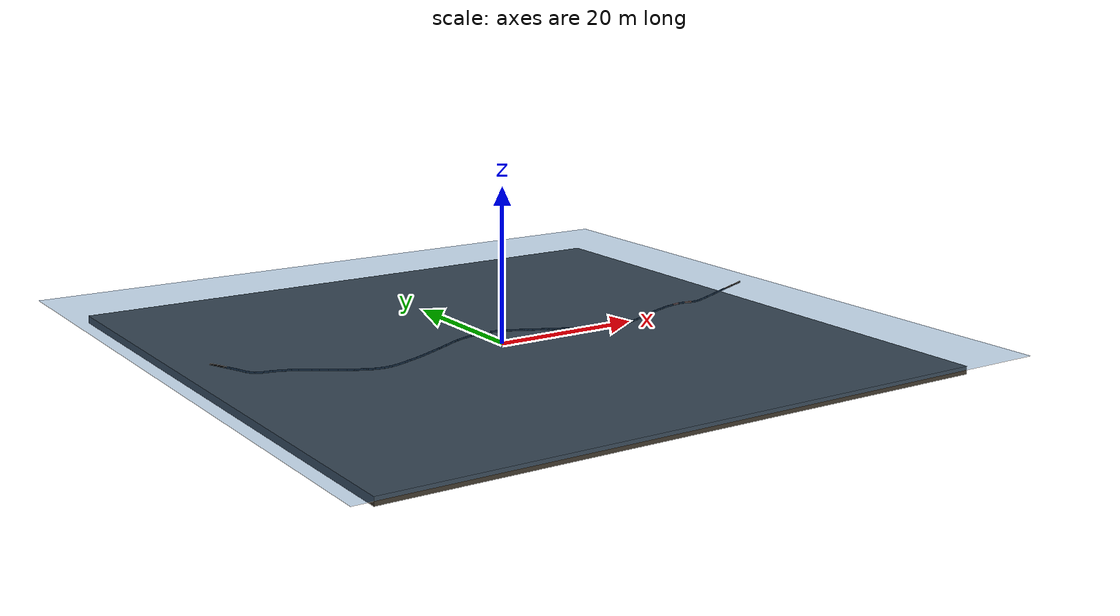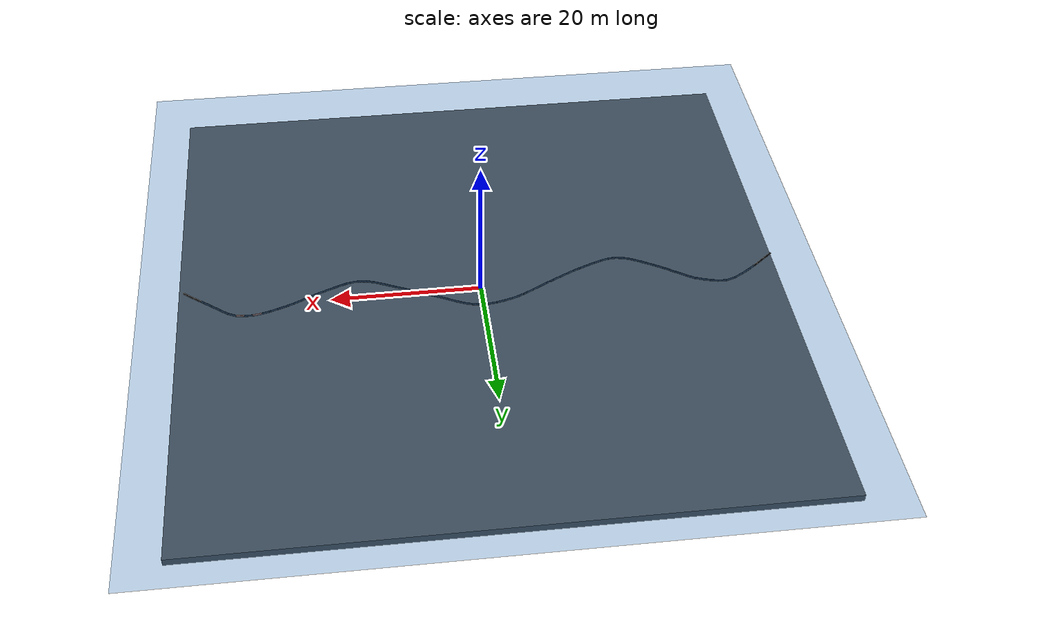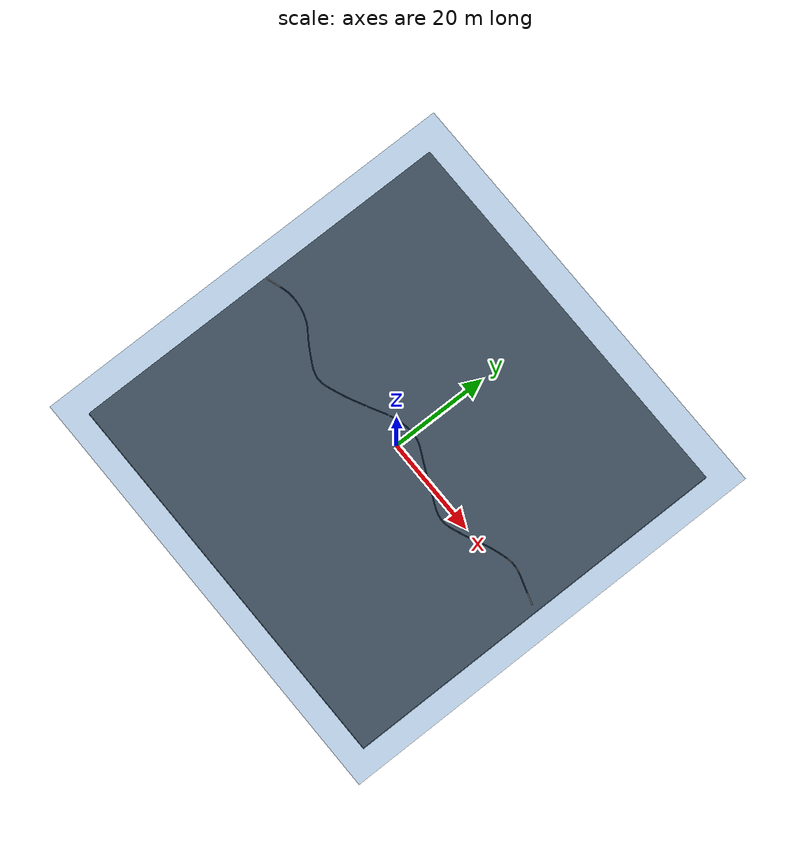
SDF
<sdf version="1.9">
 <world name="ocean_world">
  <model name="sea_surface">
   <static>true</static>
   <pose>0 0 2.20 0 0 0</pose>
   <link name="surface_link">
    <visual name="surface_visual">
     <geometry><box><size>90 90 0.04</size></box></geometry>
     <transparency>0.55</transparency>
     <material>
      <ambient>0.22 0.46 0.70 0.35</ambient>
      <diffuse>0.22 0.46 0.70 0.35</diffuse>
      <specular>0.08 0.12 0.18 0.35</specular>
     </material>
    </visual>
   </link>
  </model>
  <model name="seafloor">
   <static>true</static>
   <link name="link">
    <collision name="collision">
     <geometry><box><size>80 80 1</size></box></geometry>
     <surface>
      <friction><ode><mu>8.0</mu><mu2>8.0</mu2><slip1>0.001</slip1><slip2>0.001</slip2></ode></friction>
      <contact>
       <ode><kp>5000000</kp><kd>50000</kd><min_depth>0.0005</min_depth><max_vel>0.02</max_vel></ode>
      </contact>
     </surface>
    </collision>
    <visual name="visual">
     <geometry><box><size>80 80 1</size></box></geometry>
     <material>
      <ambient>0.17 0.15 0.12 1</ambient>
      <diffuse>0.24 0.21 0.17 1</diffuse>
      <specular>0.02 0.02 0.02 1</specular>
     </material>
    </visual>
   </link>
  </model>
  <model name="debug_center_box">
   <static>true</static>
   <pose>0 0 1 0 0 0</pose>
   <link name="debug_link">
    <collision name="debug_collision"><geometry><box><size>0.5 0.5 0.5</size></box></geometry></collision>
    <visual name="debug_visual">
     <geometry><box><size>0.5 0.5 0.5</size></box></geometry>
     <material>
      <ambient>1 0 0 1</ambient>
      <diffuse>1 0 0 1</diffuse>
      <specular>0.2 0.2 0.2 1</specular>
      <emissive>0.2 0 0 1</emissive>
     </material>
    </visual>
   </link>
  </model>
  <model name="submarine_cable">
   <static>true</static>
   <link name="cable_link">
    <inertial>
     <mass>900</mass>
     <inertia><ixx>200000</ixx><iyy>200000</iyy><izz>6500</izz><ixy>0</ixy><ixz>0</ixz><iyz>0</iyz></inertia>
    </inertial>
    <velocity_decay><linear>6.0</linear><angular>9.0</angular></velocity_decay>
    <collision name="segment_collision_1">
     <pose>-38.4991 1.0268 3.0000 0 1.948426 0.429690</pose>
     <geometry><cylinder><radius>0.12</radius><length>1.099789</length></cylinder></geometry>
    </collision>
    <visual name="segment_visual_1">
     <pose>-38.4818 1.0356 2.9923 0 1.948427 0.431259</pose>
     <geometry><cylinder><radius>0.12</radius><length>1.141484</length></cylinder></geometry>
     <material><ambient>0.01 0.01 0.01 1</ambient><diffuse>0.01 0.01 0.01 1</diffuse></material>
    </visual>
    <collision name="segment_collision_2">
     <pose>-37.4992 1.4850 2.5637 0 1.948433 0.423177</pose>
     <geometry><cylinder><radius>0.12</radius><length>1.099978</length></cylinder></geometry>
    </collision>
    <visual name="segment_visual_2">
     <pose>-37.4997 1.4863 2.5637 0 1.948345 0.429169</pose>
     <geometry><cylinder><radius>0.12</radius><length>1.183397</length></cylinder></geometry>
     <material><ambient>0.01 0.01 0.01 1</ambient><diffuse>0.01 0.01 0.01 1</diffuse></material>
    </visual>
    <collision name="segment_collision_3">
     <pose>-36.4935 1.9301 2.1275 0 1.948540 0.390872</pose>
     <geometry><cylinder><radius>0.12</radius><length>1.099878</length></cylinder></geometry>
    </collision>
    <visual name="segment_visual_3">
     <pose>-36.4932 1.9300 2.1276 0 1.948174 0.401244</pose>
     <geometry><cylinder><radius>0.12</radius><length>1.183385</length></cylinder></geometry>
     <material><ambient>0.01 0.01 0.01 1</ambient><diffuse>0.01 0.01 0.01 1</diffuse></material>
    </visual>
    <collision name="segment_collision_4">
     <pose>-35.4668 2.3225 1.6915 0 1.948877 0.313818</pose>
     <geometry><cylinder><radius>0.12</radius><length>1.099587</length></cylinder></geometry>
    </collision>
    <visual name="segment_visual_4">
     <pose>-35.4660 2.3205 1.6918 0 1.947961 0.325292</pose>
     <geometry><cylinder><radius>0.12</radius><length>1.182517</length></cylinder></geometry>
     <material><ambient>0.01 0.01 0.01 1</ambient><diffuse>0.01 0.01 0.01 1</diffuse></material>
    </visual>
    <collision name="segment_collision_5">
     <pose>-34.4081 2.6069 1.2566 0 1.949407 0.186903</pose>
     <geometry><cylinder><radius>0.12</radius><length>1.098172</length></cylinder></geometry>
    </collision>
    <visual name="segment_visual_5">
     <pose>-34.4110 2.6005 1.2444 0 1.970122 0.192888</pose>
     <geometry><cylinder><radius>0.12</radius><length>1.181233</length></cylinder></geometry>
     <material><ambient>0.01 0.01 0.01 1</ambient><diffuse>0.01 0.01 0.01 1</diffuse></material>
    </visual>
    <collision name="segment_collision_6">
     <pose>-33.3199 2.7285 0.8223 0 1.854131 0.039114</pose>
     <geometry><cylinder><radius>0.12</radius><length>1.099212</length></cylinder></geometry>
    </collision>
    <visual name="segment_visual_6">
     <pose>-33.3287 2.7252 0.8422 0 1.875605 0.037169</pose>
     <geometry><cylinder><radius>0.12</radius><length>1.150257</length></cylinder></geometry>
     <material><ambient>0.01 0.01 0.01 1</ambient><diffuse>0.01 0.01 0.01 1</diffuse></material>
    </visual>
    <collision name="segment_collision_7">
     <pose>-32.2233 2.6924 0.6200 0 1.662847 -0.090705</pose>
     <geometry><cylinder><radius>0.12</radius><length>1.099374</length></cylinder></geometry>
    </collision>
    <visual name="segment_visual_7">
     <pose>-32.2289 2.6931 0.6322 0 1.638242 -0.094895</pose>
     <geometry><cylinder><radius>0.12</radius><length>1.110680</length></cylinder></geometry>
     <material><ambient>0.01 0.01 0.01 1</ambient><diffuse>0.01 0.01 0.01 1</diffuse></material>
    </visual>
    <collision name="segment_collision_8">
     <pose>-31.1375 2.5300 0.6200 0 1.570796 -0.198281</pose>
     <geometry><cylinder><radius>0.12</radius><length>1.099527</length></cylinder></geometry>
    </collision>
    <visual name="segment_visual_8">
     <pose>-31.1379 2.5311 0.6074 0 1.547850 -0.200144</pose>
     <geometry><cylinder><radius>0.12</radius><length>1.101097</length></cylinder></geometry>
     <material><ambient>0.01 0.01 0.01 1</ambient><diffuse>0.01 0.01 0.01 1</diffuse></material>
    </visual>
    <collision name="segment_collision_9">
     <pose>-30.0727 2.2603 0.6200 0 1.570796 -0.293015</pose>
     <geometry><cylinder><radius>0.12</radius><length>1.099662</length></cylinder></geometry>
    </collision>
    <visual name="segment_visual_9">
     <pose>-30.0727 2.2603 0.6200 0 1.570796 -0.293015</pose>
     <geometry><cylinder><radius>0.12</radius><length>1.099662</length></cylinder></geometry>
     <material><ambient>0.01 0.01 0.01 1</ambient><diffuse>0.01 0.01 0.01 1</diffuse></material>
    </visual>
    <collision name="segment_collision_10">
     <pose>-29.0364 1.8961 0.6200 0 1.570796 -0.380450</pose>
     <geometry><cylinder><radius>0.12</radius><length>1.099285</length></cylinder></geometry>
    </collision>
    <visual name="segment_visual_10">
     <pose>-29.0364 1.8961 0.6200 0 1.570796 -0.380450</pose>
     <geometry><cylinder><radius>0.12</radius><length>1.099285</length></cylinder></geometry>
     <material><ambient>0.01 0.01 0.01 1</ambient><diffuse>0.01 0.01 0.01 1</diffuse></material>
    </visual>
    <collision name="segment_collision_11">
     <pose>-28.2214 1.5199 0.6200 0 1.570796 -0.515308</pose>
     <geometry><cylinder><radius>0.12</radius><length>1.099449</length></cylinder></geometry>
    </collision>
    <visual name="segment_visual_11">
     <pose>-28.2214 1.5199 0.6200 0 1.570796 -0.515308</pose>
     <geometry><cylinder><radius>0.12</radius><length>1.099449</length></cylinder></geometry>
     <material><ambient>0.01 0.01 0.01 1</ambient><diffuse>0.01 0.01 0.01 1</diffuse></material>
    </visual>
    <collision name="segment_collision_12">
     <pose>-27.1298 0.8163 0.6200 0 1.570796 -0.572520</pose>
     <geometry><cylinder><radius>0.12</radius><length>1.600000</length></cylinder></geometry>
    </collision>
    <visual name="segment_visual_12">
     <pose>-27.1298 0.8163 0.6200 0 1.570796 -0.572520</pose>
     <geometry><cylinder><radius>0.12</radius><length>1.600000</length></cylinder></geometry>
     <material><ambient>0.01 0.01 0.01 1</ambient><diffuse>0.01 0.01 0.01 1</diffuse></material>
    </visual>
    <collision name="segment_collision_13">
     <pose>-26.0381 0.1127 0.6200 0 1.570796 -0.584306</pose>
     <geometry><cylinder><radius>0.12</radius><length>1.099998</length></cylinder></geometry>
    </collision>
    <visual name="segment_visual_13">
     <pose>-26.0381 0.1127 0.6200 0 1.570796 -0.584306</pose>
     <geometry><cylinder><radius>0.12</radius><length>1.099998</length></cylinder></geometry>
     <material><ambient>0.01 0.01 0.01 1</ambient><diffuse>0.01 0.01 0.01 1</diffuse></material>
    </visual>
    <collision name="segment_collision_14">
     <pose>-25.2961 -0.3964 0.6200 0 1.570796 -0.579301</pose>
     <geometry><cylinder><radius>0.12</radius><length>1.099925</length></cylinder></geometry>
    </collision>
    <visual name="segment_visual_14">
     <pose>-25.2961 -0.3964 0.6200 0 1.570796 -0.579301</pose>
     <geometry><cylinder><radius>0.12</radius><length>1.099925</length></cylinder></geometry>
     <material><ambient>0.01 0.01 0.01 1</ambient><diffuse>0.01 0.01 0.01 1</diffuse></material>
    </visual>
    <collision name="segment_collision_15">
     <pose>-24.3656 -0.9814 0.6200 0 1.570796 -0.540045</pose>
     <geometry><cylinder><radius>0.12</radius><length>1.099650</length></cylinder></geometry>
    </collision>
    <visual name="segment_visual_15">
     <pose>-24.3656 -0.9814 0.6200 0 1.570796 -0.540045</pose>
     <geometry><cylinder><radius>0.12</radius><length>1.099650</length></cylinder></geometry>
     <material><ambient>0.01 0.01 0.01 1</ambient><diffuse>0.01 0.01 0.01 1</diffuse></material>
    </visual>
    <collision name="segment_collision_16">
     <pose>-23.4105 -1.5268 0.6200 0 1.570796 -0.514556</pose>
     <geometry><cylinder><radius>0.12</radius><length>1.099967</length></cylinder></geometry>
    </collision>
    <visual name="segment_visual_16">
     <pose>-23.4105 -1.5268 0.6200 0 1.570796 -0.514556</pose>
     <geometry><cylinder><radius>0.12</radius><length>1.099967</length></cylinder></geometry>
     <material><ambient>0.01 0.01 0.01 1</ambient><diffuse>0.01 0.01 0.01 1</diffuse></material>
    </visual>
    <collision name="segment_collision_17">
     <pose>-22.4507 -2.0640 0.6200 0 1.570796 -0.499401</pose>
     <geometry><cylinder><radius>0.12</radius><length>1.099977</length></cylinder></geometry>
    </collision>
    <visual name="segment_visual_17">
     <pose>-22.4507 -2.0640 0.6200 0 1.570796 -0.499401</pose>
     <geometry><cylinder><radius>0.12</radius><length>1.099977</length></cylinder></geometry>
     <material><ambient>0.01 0.01 0.01 1</ambient><diffuse>0.01 0.01 0.01 1</diffuse></material>
    </visual>
    <collision name="segment_collision_18">
     <pose>-21.4797 -2.5801 0.6200 0 1.570796 -0.451082</pose>
     <geometry><cylinder><radius>0.12</radius><length>1.600000</length></cylinder></geometry>
    </collision>
    <visual name="segment_visual_18">
     <pose>-21.4797 -2.5801 0.6200 0 1.570796 -0.451082</pose>
     <geometry><cylinder><radius>0.12</radius><length>1.600000</length></cylinder></geometry>
     <material><ambient>0.01 0.01 0.01 1</ambient><diffuse>0.01 0.01 0.01 1</diffuse></material>
    </visual>
    <collision name="segment_collision_19">
     <pose>-20.4744 -3.0213 0.6200 0 1.570796 -0.341054</pose>
     <geometry><cylinder><radius>0.12</radius><length>1.099013</length></cylinder></geometry>
    </collision>
    <visual name="segment_visual_19">
     <pose>-20.4744 -3.0213 0.6200 0 1.570796 -0.341054</pose>
     <geometry><cylinder><radius>0.12</radius><length>1.099013</length></cylinder></geometry>
     <material><ambient>0.01 0.01 0.01 1</ambient><diffuse>0.01 0.01 0.01 1</diffuse></material>
    </visual>
    <collision name="segment_collision_20">
     <pose>-19.4201 -3.3111 0.6200 0 1.570796 -0.161096</pose>
     <geometry><cylinder><radius>0.12</radius><length>1.097306</length></cylinder></geometry>
    </collision>
    <visual name="segment_visual_20">
     <pose>-19.4201 -3.3111 0.6200 0 1.570796 -0.161096</pose>
     <geometry><cylinder><radius>0.12</radius><length>1.097306</length></cylinder></geometry>
     <material><ambient>0.01 0.01 0.01 1</ambient><diffuse>0.01 0.01 0.01 1</diffuse></material>
    </visual>
    <collision name="segment_collision_21">
     <pose>-18.3323 -3.3694 0.6200 0 1.570796 0.052815</pose>
     <geometry><cylinder><radius>0.12</radius><length>1.097564</length></cylinder></geometry>
    </collision>
    <visual name="segment_visual_21">
     <pose>-18.3323 -3.3694 0.6200 0 1.570796 0.052815</pose>
     <geometry><cylinder><radius>0.12</radius><length>1.097564</length></cylinder></geometry>
     <material><ambient>0.01 0.01 0.01 1</ambient><diffuse>0.01 0.01 0.01 1</diffuse></material>
    </visual>
    <collision name="segment_collision_22">
     <pose>-17.2523 -3.1965 0.6200 0 1.570796 0.229747</pose>
     <geometry><cylinder><radius>0.12</radius><length>1.099096</length></cylinder></geometry>
    </collision>
    <visual name="segment_visual_22">
     <pose>-17.2523 -3.1965 0.6200 0 1.570796 0.229747</pose>
     <geometry><cylinder><radius>0.12</radius><length>1.099096</length></cylinder></geometry>
     <material><ambient>0.01 0.01 0.01 1</ambient><diffuse>0.01 0.01 0.01 1</diffuse></material>
    </visual>
    <collision name="segment_collision_23">
     <pose>-16.2034 -2.8715 0.6200 0 1.570796 0.335242</pose>
     <geometry><cylinder><radius>0.12</radius><length>1.099794</length></cylinder></geometry>
    </collision>
    <visual name="segment_visual_23">
     <pose>-16.2034 -2.8715 0.6200 0 1.570796 0.335242</pose>
     <geometry><cylinder><radius>0.12</radius><length>1.099794</length></cylinder></geometry>
     <material><ambient>0.01 0.01 0.01 1</ambient><diffuse>0.01 0.01 0.01 1</diffuse></material>
    </visual>
    <collision name="segment_collision_24">
     <pose>-15.1782 -2.4739 0.6200 0 1.570796 0.376336</pose>
     <geometry><cylinder><radius>0.12</radius><length>1.099994</length></cylinder></geometry>
    </collision>
    <visual name="segment_visual_24">
     <pose>-15.1782 -2.4739 0.6200 0 1.570796 0.376336</pose>
     <geometry><cylinder><radius>0.12</radius><length>1.099994</length></cylinder></geometry>
     <material><ambient>0.01 0.01 0.01 1</ambient><diffuse>0.01 0.01 0.01 1</diffuse></material>
    </visual>
    <collision name="segment_collision_25">
     <pose>-14.1577 -2.0631 0.6200 0 1.570796 0.388416</pose>
     <geometry><cylinder><radius>0.12</radius><length>1.099974</length></cylinder></geometry>
    </collision>
    <visual name="segment_visual_25">
     <pose>-14.1577 -2.0631 0.6200 0 1.570796 0.388416</pose>
     <geometry><cylinder><radius>0.12</radius><length>1.099974</length></cylinder></geometry>
     <material><ambient>0.01 0.01 0.01 1</ambient><diffuse>0.01 0.01 0.01 1</diffuse></material>
    </visual>
    <collision name="segment_collision_26">
     <pose>-13.1423 -1.6408 0.6200 0 1.570796 0.412356</pose>
     <geometry><cylinder><radius>0.12</radius><length>1.099883</length></cylinder></geometry>
    </collision>
    <visual name="segment_visual_26">
     <pose>-13.1423 -1.6408 0.6200 0 1.570796 0.412356</pose>
     <geometry><cylinder><radius>0.12</radius><length>1.099883</length></cylinder></geometry>
     <material><ambient>0.01 0.01 0.01 1</ambient><diffuse>0.01 0.01 0.01 1</diffuse></material>
    </visual>
    <collision name="segment_collision_27">
     <pose>-12.1430 -1.1818 0.6200 0 1.570796 0.445225</pose>
     <geometry><cylinder><radius>0.12</radius><length>1.099958</length></cylinder></geometry>
    </collision>
    <visual name="segment_visual_27">
     <pose>-12.1430 -1.1818 0.6200 0 1.570796 0.445225</pose>
     <geometry><cylinder><radius>0.12</radius><length>1.099958</length></cylinder></geometry>
     <material><ambient>0.01 0.01 0.01 1</ambient><diffuse>0.01 0.01 0.01 1</diffuse></material>
    </visual>
    <collision name="segment_collision_28">
     <pose>-11.1573 -0.6936 0.6200 0 1.570796 0.465660</pose>
     <geometry><cylinder><radius>0.12</radius><length>1.099994</length></cylinder></geometry>
    </collision>
    <visual name="segment_visual_28">
     <pose>-11.1573 -0.6936 0.6200 0 1.570796 0.465660</pose>
     <geometry><cylinder><radius>0.12</radius><length>1.099994</length></cylinder></geometry>
     <material><ambient>0.01 0.01 0.01 1</ambient><diffuse>0.01 0.01 0.01 1</diffuse></material>
    </visual>
    <collision name="segment_collision_29">
     <pose>-10.1773 -0.1940 0.6200 0 1.570796 0.471198</pose>
     <geometry><cylinder><radius>0.12</radius><length>1.099998</length></cylinder></geometry>
    </collision>
    <visual name="segment_visual_29">
     <pose>-10.1773 -0.1940 0.6200 0 1.570796 0.471198</pose>
     <geometry><cylinder><radius>0.12</radius><length>1.099998</length></cylinder></geometry>
     <material><ambient>0.01 0.01 0.01 1</ambient><diffuse>0.01 0.01 0.01 1</diffuse></material>
    </visual>
    <collision name="segment_collision_30">
     <pose>-9.1983 0.3074 0.6200 0 1.570796 0.473284</pose>
     <geometry><cylinder><radius>0.12</radius><length>1.099970</length></cylinder></geometry>
    </collision>
    <visual name="segment_visual_30">
     <pose>-9.4787 0.1638 0.6200 0 1.570796 0.473284</pose>
     <geometry><cylinder><radius>0.12</radius><length>0.469985</length></cylinder></geometry>
     <material><ambient>0.01 0.01 0.01 1</ambient><diffuse>0.01 0.01 0.01 1</diffuse></material>
    </visual>
    <visual name="segment_visual_30_right">
     <pose>-8.9179 0.4510 0.6200 0 1.570796 0.473284</pose>
     <geometry><cylinder><radius>0.12</radius><length>0.469985</length></cylinder></geometry>
     <material><ambient>0.01 0.01 0.01 1</ambient><diffuse>0.01 0.01 0.01 1</diffuse></material>
    </visual>
    <collision name="segment_collision_31">
     <pose>-8.2193 0.8087 0.6200 0 1.570796 0.494943</pose>
     <geometry><cylinder><radius>0.12</radius><length>1.099944</length></cylinder></geometry>
    </collision>
    <visual name="segment_visual_31">
     <pose>-8.2193 0.8087 0.6200 0 1.570796 0.494943</pose>
     <geometry><cylinder><radius>0.12</radius><length>1.099944</length></cylinder></geometry>
     <material><ambient>0.01 0.01 0.01 1</ambient><diffuse>0.01 0.01 0.01 1</diffuse></material>
    </visual>
    <collision name="segment_collision_32">
     <pose>-7.2545 1.3368 0.6200 0 1.570796 0.500961</pose>
     <geometry><cylinder><radius>0.12</radius><length>1.099999</length></cylinder></geometry>
    </collision>
    <visual name="segment_visual_32">
     <pose>-7.2545 1.3368 0.6200 0 1.570796 0.500961</pose>
     <geometry><cylinder><radius>0.12</radius><length>1.099999</length></cylinder></geometry>
     <material><ambient>0.01 0.01 0.01 1</ambient><diffuse>0.01 0.01 0.01 1</diffuse></material>
    </visual>
    <collision name="segment_collision_33">
     <pose>-6.2898 1.8652 0.6200 0 1.570796 0.484249</pose>
     <geometry><cylinder><radius>0.12</radius><length>1.099945</length></cylinder></geometry>
    </collision>
    <visual name="segment_visual_33">
     <pose>-6.2898 1.8652 0.6200 0 1.570796 0.484249</pose>
     <geometry><cylinder><radius>0.12</radius><length>1.099945</length></cylinder></geometry>
     <material><ambient>0.01 0.01 0.01 1</ambient><diffuse>0.01 0.01 0.01 1</diffuse></material>
    </visual>
    <collision name="segment_collision_34">
     <pose>-5.3082 2.3606 0.6200 0 1.570796 0.431085</pose>
     <geometry><cylinder><radius>0.12</radius><length>1.099754</length></cylinder></geometry>
    </collision>
    <visual name="segment_visual_34">
     <pose>-5.5943 2.2290 0.6200 0 1.570796 0.431085</pose>
     <geometry><cylinder><radius>0.12</radius><length>0.469877</length></cylinder></geometry>
     <material><ambient>0.01 0.01 0.01 1</ambient><diffuse>0.01 0.01 0.01 1</diffuse></material>
    </visual>
    <visual name="segment_visual_34_right">
     <pose>-5.0221 2.4922 0.6200 0 1.570796 0.431085</pose>
     <geometry><cylinder><radius>0.12</radius><length>0.469877</length></cylinder></geometry>
     <material><ambient>0.01 0.01 0.01 1</ambient><diffuse>0.01 0.01 0.01 1</diffuse></material>
    </visual>
    <collision name="segment_collision_35">
     <pose>-4.2943 2.7830 0.6200 0 1.570796 0.354378</pose>
     <geometry><cylinder><radius>0.12</radius><length>1.099447</length></cylinder></geometry>
    </collision>
    <visual name="segment_visual_35">
     <pose>-4.2943 2.7830 0.6200 0 1.570796 0.354378</pose>
     <geometry><cylinder><radius>0.12</radius><length>1.099447</length></cylinder></geometry>
     <material><ambient>0.01 0.01 0.01 1</ambient><diffuse>0.01 0.01 0.01 1</diffuse></material>
    </visual>
    <collision name="segment_collision_36">
     <pose>-3.2490 3.1225 0.6200 0 1.570796 0.281469</pose>
     <geometry><cylinder><radius>0.12</radius><length>1.099889</length></cylinder></geometry>
    </collision>
    <visual name="segment_visual_36">
     <pose>-3.2490 3.1225 0.6200 0 1.570796 0.281469</pose>
     <geometry><cylinder><radius>0.12</radius><length>1.099889</length></cylinder></geometry>
     <material><ambient>0.01 0.01 0.01 1</ambient><diffuse>0.01 0.01 0.01 1</diffuse></material>
    </visual>
    <collision name="segment_collision_37">
     <pose>-2.1836 3.3933 0.6200 0 1.570796 0.209917</pose>
     <geometry><cylinder><radius>0.12</radius><length>1.099713</length></cylinder></geometry>
    </collision>
    <visual name="segment_visual_37">
     <pose>-2.1836 3.3933 0.6200 0 1.570796 0.209917</pose>
     <geometry><cylinder><radius>0.12</radius><length>1.099713</length></cylinder></geometry>
     <material><ambient>0.01 0.01 0.01 1</ambient><diffuse>0.01 0.01 0.01 1</diffuse></material>
    </visual>
    <collision name="segment_collision_38">
     <pose>-1.0612 3.5797 0.6200 0 1.570796 0.116490</pose>
     <geometry><cylinder><radius>0.12</radius><length>1.099420</length></cylinder></geometry>
    </collision>
    <visual name="segment_visual_38">
     <pose>-1.0612 3.5797 0.6200 0 1.570796 0.116490</pose>
     <geometry><cylinder><radius>0.12</radius><length>1.099420</length></cylinder></geometry>
     <material><ambient>0.01 0.01 0.01 1</ambient><diffuse>0.01 0.01 0.01 1</diffuse></material>
    </visual>
    <collision name="segment_collision_40">
     <pose>1.0454 3.5605 0.6200 0 1.570796 -0.163250</pose>
     <geometry><cylinder><radius>0.12</radius><length>1.098341</length></cylinder></geometry>
    </collision>
    <visual name="segment_visual_40">
     <pose>1.0454 3.5605 0.6200 0 1.570796 -0.163250</pose>
     <geometry><cylinder><radius>0.12</radius><length>1.098341</length></cylinder></geometry>
     <material><ambient>0.01 0.01 0.01 1</ambient><diffuse>0.01 0.01 0.01 1</diffuse></material>
    </visual>
    <collision name="segment_collision_41">
     <pose>2.1472 3.2934 0.6200 0 1.570796 -0.313527</pose>
     <geometry><cylinder><radius>0.12</radius><length>1.099202</length></cylinder></geometry>
    </collision>
    <visual name="segment_visual_41">
     <pose>2.1472 3.2934 0.6200 0 1.570796 -0.313527</pose>
     <geometry><cylinder><radius>0.12</radius><length>1.099202</length></cylinder></geometry>
     <material><ambient>0.01 0.01 0.01 1</ambient><diffuse>0.01 0.01 0.01 1</diffuse></material>
    </visual>
    <collision name="segment_collision_42">
     <pose>3.1667 2.8853 0.6200 0 1.570796 -0.415557</pose>
     <geometry><cylinder><radius>0.12</radius><length>1.099798</length></cylinder></geometry>
    </collision>
    <visual name="segment_visual_42">
     <pose>3.1667 2.8853 0.6200 0 1.570796 -0.415557</pose>
     <geometry><cylinder><radius>0.12</radius><length>1.099798</length></cylinder></geometry>
     <material><ambient>0.01 0.01 0.01 1</ambient><diffuse>0.01 0.01 0.01 1</diffuse></material>
    </visual>
    <collision name="segment_collision_43">
     <pose>4.1567 2.4067 0.6200 0 1.570796 -0.457975</pose>
     <geometry><cylinder><radius>0.12</radius><length>1.099987</length></cylinder></geometry>
    </collision>
    <visual name="segment_visual_43">
     <pose>4.1567 2.4067 0.6200 0 1.570796 -0.457975</pose>
     <geometry><cylinder><radius>0.12</radius><length>1.099987</length></cylinder></geometry>
     <material><ambient>0.01 0.01 0.01 1</ambient><diffuse>0.01 0.01 0.01 1</diffuse></material>
    </visual>
    <collision name="segment_collision_44">
     <pose>5.1396 1.9128 0.6200 0 1.570796 -0.454356</pose>
     <geometry><cylinder><radius>0.12</radius><length>1.099943</length></cylinder></geometry>
    </collision>
    <visual name="segment_visual_44">
     <pose>5.1396 1.9128 0.6200 0 1.570796 -0.454356</pose>
     <geometry><cylinder><radius>0.12</radius><length>1.099943</length></cylinder></geometry>
     <material><ambient>0.01 0.01 0.01 1</ambient><diffuse>0.01 0.01 0.01 1</diffuse></material>
    </visual>
    <collision name="segment_collision_45">
     <pose>6.1332 1.4413 0.6200 0 1.570796 -0.437520</pose>
     <geometry><cylinder><radius>0.12</radius><length>1.099979</length></cylinder></geometry>
    </collision>
    <visual name="segment_visual_45">
     <pose>6.1332 1.4413 0.6200 0 1.570796 -0.437520</pose>
     <geometry><cylinder><radius>0.12</radius><length>1.099979</length></cylinder></geometry>
     <material><ambient>0.01 0.01 0.01 1</ambient><diffuse>0.01 0.01 0.01 1</diffuse></material>
    </visual>
    <collision name="segment_collision_46">
     <pose>7.1321 0.9808 0.6200 0 1.570796 -0.437135</pose>
     <geometry><cylinder><radius>0.12</radius><length>1.099991</length></cylinder></geometry>
    </collision>
    <visual name="segment_visual_46">
     <pose>7.1321 0.9808 0.6200 0 1.570796 -0.437135</pose>
     <geometry><cylinder><radius>0.12</radius><length>1.099991</length></cylinder></geometry>
     <material><ambient>0.01 0.01 0.01 1</ambient><diffuse>0.01 0.01 0.01 1</diffuse></material>
    </visual>
    <collision name="segment_collision_47">
     <pose>8.1262 0.5100 0.6200 0 1.570796 -0.442383</pose>
     <geometry><cylinder><radius>0.12</radius><length>1.100000</length></cylinder></geometry>
    </collision>
    <visual name="segment_visual_47">
     <pose>8.1262 0.5100 0.6200 0 1.570796 -0.442383</pose>
     <geometry><cylinder><radius>0.12</radius><length>1.100000</length></cylinder></geometry>
     <material><ambient>0.01 0.01 0.01 1</ambient><diffuse>0.01 0.01 0.01 1</diffuse></material>
    </visual>
    <collision name="segment_collision_48">
     <pose>9.1203 0.0390 0.6200 0 1.570796 -0.435672</pose>
     <geometry><cylinder><radius>0.12</radius><length>1.099991</length></cylinder></geometry>
    </collision>
    <visual name="segment_visual_48">
     <pose>9.1203 0.0390 0.6200 0 1.570796 -0.435672</pose>
     <geometry><cylinder><radius>0.12</radius><length>1.099991</length></cylinder></geometry>
     <material><ambient>0.01 0.01 0.01 1</ambient><diffuse>0.01 0.01 0.01 1</diffuse></material>
    </visual>
    <collision name="segment_collision_49">
     <pose>10.1206 -0.4184 0.6200 0 1.570796 -0.420412</pose>
     <geometry><cylinder><radius>0.12</radius><length>1.099962</length></cylinder></geometry>
    </collision>
    <visual name="segment_visual_49">
     <pose>10.1206 -0.4184 0.6200 0 1.570796 -0.420412</pose>
     <geometry><cylinder><radius>0.12</radius><length>1.099962</length></cylinder></geometry>
     <material><ambient>0.01 0.01 0.01 1</ambient><diffuse>0.01 0.01 0.01 1</diffuse></material>
    </visual>
    <collision name="segment_collision_50">
     <pose>11.1285 -0.8588 0.6200 0 1.570796 -0.416747</pose>
     <geometry><cylinder><radius>0.12</radius><length>1.099937</length></cylinder></geometry>
    </collision>
    <visual name="segment_visual_50">
     <pose>11.1285 -0.8588 0.6200 0 1.570796 -0.416747</pose>
     <geometry><cylinder><radius>0.12</radius><length>1.099937</length></cylinder></geometry>
     <material><ambient>0.01 0.01 0.01 1</ambient><diffuse>0.01 0.01 0.01 1</diffuse></material>
    </visual>
    <collision name="segment_collision_51">
     <pose>12.1320 -1.3088 0.6200 0 1.570796 -0.426007</pose>
     <geometry><cylinder><radius>0.12</radius><length>1.099991</length></cylinder></geometry>
    </collision>
    <visual name="segment_visual_51">
     <pose>12.1320 -1.3088 0.6200 0 1.570796 -0.426007</pose>
     <geometry><cylinder><radius>0.12</radius><length>1.099991</length></cylinder></geometry>
     <material><ambient>0.01 0.01 0.01 1</ambient><diffuse>0.01 0.01 0.01 1</diffuse></material>
    </visual>
    <collision name="segment_collision_52">
     <pose>13.1316 -1.7678 0.6200 0 1.570796 -0.408081</pose>
     <geometry><cylinder><radius>0.12</radius><length>1.099908</length></cylinder></geometry>
    </collision>
    <visual name="segment_visual_52">
     <pose>13.1316 -1.7678 0.6200 0 1.570796 -0.408081</pose>
     <geometry><cylinder><radius>0.12</radius><length>1.099908</length></cylinder></geometry>
     <material><ambient>0.01 0.01 0.01 1</ambient><diffuse>0.01 0.01 0.01 1</diffuse></material>
    </visual>
    <collision name="segment_collision_53">
     <pose>14.1498 -2.1812 0.6200 0 1.570796 -0.329241</pose>
     <geometry><cylinder><radius>0.12</radius><length>1.099408</length></cylinder></geometry>
    </collision>
    <visual name="segment_visual_53">
     <pose>14.1498 -2.1812 0.6200 0 1.570796 -0.329241</pose>
     <geometry><cylinder><radius>0.12</radius><length>1.099408</length></cylinder></geometry>
     <material><ambient>0.01 0.01 0.01 1</ambient><diffuse>0.01 0.01 0.01 1</diffuse></material>
    </visual>
    <collision name="segment_collision_54">
     <pose>15.2049 -2.4762 0.6200 0 1.570796 -0.177930</pose>
     <geometry><cylinder><radius>0.12</radius><length>1.098124</length></cylinder></geometry>
    </collision>
    <visual name="segment_visual_54">
     <pose>15.2049 -2.4762 0.6200 0 1.570796 -0.177930</pose>
     <geometry><cylinder><radius>0.12</radius><length>1.098124</length></cylinder></geometry>
     <material><ambient>0.01 0.01 0.01 1</ambient><diffuse>0.01 0.01 0.01 1</diffuse></material>
    </visual>
    <collision name="segment_collision_55">
     <pose>16.2918 -2.5664 0.6200 0 1.570796 0.023074</pose>
     <geometry><cylinder><radius>0.12</radius><length>1.097435</length></cylinder></geometry>
    </collision>
    <visual name="segment_visual_55">
     <pose>16.2918 -2.5664 0.6200 0 1.570796 0.023074</pose>
     <geometry><cylinder><radius>0.12</radius><length>1.097435</length></cylinder></geometry>
     <material><ambient>0.01 0.01 0.01 1</ambient><diffuse>0.01 0.01 0.01 1</diffuse></material>
    </visual>
    <collision name="segment_collision_56">
     <pose>17.3758 -2.4261 0.6200 0 1.570796 0.205980</pose>
     <geometry><cylinder><radius>0.12</radius><length>1.098944</length></cylinder></geometry>
    </collision>
    <visual name="segment_visual_56">
     <pose>17.3758 -2.4261 0.6200 0 1.570796 0.205980</pose>
     <geometry><cylinder><radius>0.12</radius><length>1.098944</length></cylinder></geometry>
     <material><ambient>0.01 0.01 0.01 1</ambient><diffuse>0.01 0.01 0.01 1</diffuse></material>
    </visual>
    <collision name="segment_collision_57">
     <pose>18.4297 -2.1197 0.6200 0 1.570796 0.323926</pose>
     <geometry><cylinder><radius>0.12</radius><length>1.099701</length></cylinder></geometry>
    </collision>
    <visual name="segment_visual_57">
     <pose>18.4297 -2.1197 0.6200 0 1.570796 0.323926</pose>
     <geometry><cylinder><radius>0.12</radius><length>1.099701</length></cylinder></geometry>
     <material><ambient>0.01 0.01 0.01 1</ambient><diffuse>0.01 0.01 0.01 1</diffuse></material>
    </visual>
    <collision name="segment_collision_58">
     <pose>19.4568 -1.7274 0.6200 0 1.570796 0.375998</pose>
     <geometry><cylinder><radius>0.12</radius><length>1.099976</length></cylinder></geometry>
    </collision>
    <visual name="segment_visual_58">
     <pose>19.4568 -1.7274 0.6200 0 1.570796 0.375998</pose>
     <geometry><cylinder><radius>0.12</radius><length>1.099976</length></cylinder></geometry>
     <material><ambient>0.01 0.01 0.01 1</ambient><diffuse>0.01 0.01 0.01 1</diffuse></material>
    </visual>
    <collision name="segment_collision_59">
     <pose>20.4754 -1.3121 0.6200 0 1.570796 0.390375</pose>
     <geometry><cylinder><radius>0.12</radius><length>1.099952</length></cylinder></geometry>
    </collision>
    <visual name="segment_visual_59">
     <pose>20.4754 -1.3121 0.6200 0 1.570796 0.390375</pose>
     <geometry><cylinder><radius>0.12</radius><length>1.099952</length></cylinder></geometry>
     <material><ambient>0.01 0.01 0.01 1</ambient><diffuse>0.01 0.01 0.01 1</diffuse></material>
    </visual>
    <collision name="segment_collision_60">
     <pose>21.4911 -0.8903 0.6200 0 1.570796 0.411072</pose>
     <geometry><cylinder><radius>0.12</radius><length>1.099760</length></cylinder></geometry>
    </collision>
    <visual name="segment_visual_60">
     <pose>21.4911 -0.8903 0.6200 0 1.570796 0.411072</pose>
     <geometry><cylinder><radius>0.12</radius><length>1.099760</length></cylinder></geometry>
     <material><ambient>0.01 0.01 0.01 1</ambient><diffuse>0.01 0.01 0.01 1</diffuse></material>
    </visual>
    <collision name="segment_collision_61">
     <pose>22.4912 -0.4334 0.6200 0 1.570796 0.444877</pose>
     <geometry><cylinder><radius>0.12</radius><length>1.099949</length></cylinder></geometry>
    </collision>
    <visual name="segment_visual_61">
     <pose>22.4912 -0.4334 0.6200 0 1.570796 0.444877</pose>
     <geometry><cylinder><radius>0.12</radius><length>1.099949</length></cylinder></geometry>
     <material><ambient>0.01 0.01 0.01 1</ambient><diffuse>0.01 0.01 0.01 1</diffuse></material>
    </visual>
    <collision name="segment_collision_62">
     <pose>23.4762 0.0561 0.6200 0 1.570796 0.459236</pose>
     <geometry><cylinder><radius>0.12</radius><length>1.099998</length></cylinder></geometry>
    </collision>
    <visual name="segment_visual_62">
     <pose>23.4762 0.0561 0.6200 0 1.570796 0.459236</pose>
     <geometry><cylinder><radius>0.12</radius><length>1.099998</length></cylinder></geometry>
     <material><ambient>0.01 0.01 0.01 1</ambient><diffuse>0.01 0.01 0.01 1</diffuse></material>
    </visual>
    <collision name="segment_collision_63">
     <pose>24.4631 0.5417 0.6200 0 1.570796 0.436531</pose>
     <geometry><cylinder><radius>0.12</radius><length>1.099926</length></cylinder></geometry>
    </collision>
    <visual name="segment_visual_63">
     <pose>24.4631 0.5417 0.6200 0 1.570796 0.436531</pose>
     <geometry><cylinder><radius>0.12</radius><length>1.099926</length></cylinder></geometry>
     <material><ambient>0.01 0.01 0.01 1</ambient><diffuse>0.01 0.01 0.01 1</diffuse></material>
    </visual>
    <collision name="segment_collision_64">
     <pose>25.4687 0.9857 0.6200 0 1.570796 0.389090</pose>
     <geometry><cylinder><radius>0.12</radius><length>1.099681</length></cylinder></geometry>
    </collision>
    <visual name="segment_visual_64">
     <pose>25.4687 0.9857 0.6200 0 1.570796 0.389090</pose>
     <geometry><cylinder><radius>0.12</radius><length>1.099681</length></cylinder></geometry>
     <material><ambient>0.01 0.01 0.01 1</ambient><diffuse>0.01 0.01 0.01 1</diffuse></material>
    </visual>
    <collision name="segment_collision_65">
     <pose>26.4968 1.3755 0.6200 0 1.570796 0.346700</pose>
     <geometry><cylinder><radius>0.12</radius><length>1.099999</length></cylinder></geometry>
    </collision>
    <visual name="segment_visual_65">
     <pose>26.4968 1.3755 0.6200 0 1.570796 0.346700</pose>
     <geometry><cylinder><radius>0.12</radius><length>1.099999</length></cylinder></geometry>
     <material><ambient>0.01 0.01 0.01 1</ambient><diffuse>0.01 0.01 0.01 1</diffuse></material>
    </visual>
    <collision name="segment_collision_66">
     <pose>27.5371 1.7330 0.6200 0 1.570796 0.312231</pose>
     <geometry><cylinder><radius>0.12</radius><length>1.099937</length></cylinder></geometry>
    </collision>
    <visual name="segment_visual_66">
     <pose>27.5371 1.7330 0.6200 0 1.570796 0.312231</pose>
     <geometry><cylinder><radius>0.12</radius><length>1.099937</length></cylinder></geometry>
     <material><ambient>0.01 0.01 0.01 1</ambient><diffuse>0.01 0.01 0.01 1</diffuse></material>
    </visual>
    <collision name="segment_collision_67">
     <pose>28.5895 2.0510 0.6200 0 1.570796 0.253473</pose>
     <geometry><cylinder><radius>0.12</radius><length>1.099721</length></cylinder></geometry>
    </collision>
    <visual name="segment_visual_67">
     <pose>28.5895 2.0510 0.6200 0 1.570796 0.253473</pose>
     <geometry><cylinder><radius>0.12</radius><length>1.099721</length></cylinder></geometry>
     <material><ambient>0.01 0.01 0.01 1</ambient><diffuse>0.01 0.01 0.01 1</diffuse></material>
    </visual>
    <collision name="segment_collision_68">
     <pose>29.6626 2.2836 0.6200 0 1.570796 0.149030</pose>
     <geometry><cylinder><radius>0.12</radius><length>1.099245</length></cylinder></geometry>
    </collision>
    <visual name="segment_visual_68">
     <pose>29.6626 2.2836 0.6200 0 1.570796 0.149030</pose>
     <geometry><cylinder><radius>0.12</radius><length>1.099245</length></cylinder></geometry>
     <material>
      <ambient>0.32 0.14 0.08 1</ambient>
      <diffuse>0.45 0.22 0.12 1</diffuse>
      <specular>0.08 0.04 0.02 1</specular>
      <pbr><metal><roughness>0.95</roughness><metalness>0.05</metalness></metal></pbr>
     </material>
    </visual>
    <collision name="segment_collision_69">
     <pose>30.7541 2.3760 0.6200 0 1.570796 -0.001054</pose>
     <geometry><cylinder><radius>0.12</radius><length>1.098308</length></cylinder></geometry>
    </collision>
    <visual name="segment_visual_69">
     <pose>30.7541 2.3760 0.6200 0 1.570796 -0.001054</pose>
     <geometry><cylinder><radius>0.12</radius><length>1.098308</length></cylinder></geometry>
     <material><ambient>0.01 0.01 0.01 1</ambient><diffuse>0.01 0.01 0.01 1</diffuse></material>
    </visual>
    <collision name="segment_collision_70">
     <pose>31.8438 2.2813 0.6200 0 1.570796 -0.162891</pose>
     <geometry><cylinder><radius>0.12</radius><length>1.098783</length></cylinder></geometry>
    </collision>
    <visual name="segment_visual_70">
     <pose>31.8443 2.2766 0.5995 0 1.607959 -0.171116</pose>
     <geometry><cylinder><radius>0.12</radius><length>1.102040</length></cylinder></geometry>
     <material><ambient>0.45 0.22 0.08 1</ambient><diffuse>0.45 0.22 0.08 1</diffuse></material>
    </visual>
    <collision name="segment_collision_71">
     <pose>32.9099 2.0217 0.6200 0 1.421299 -0.283019</pose>
     <geometry><cylinder><radius>0.12</radius><length>1.099657</length></cylinder></geometry>
    </collision>
    <visual name="segment_visual_71">
     <pose>32.9170 2.0200 0.6574 0 1.430543 -0.298151</pose>
     <geometry><cylinder><radius>0.12</radius><length>1.120160</length></cylinder></geometry>
     <material><ambient>0.01 0.01 0.01 1</ambient><diffuse>0.01 0.01 0.01 1</diffuse></material>
    </visual>
    <collision name="segment_collision_72">
     <pose>33.9509 1.6685 0.9505 0 1.235243 -0.345208</pose>
     <geometry><cylinder><radius>0.12</radius><length>1.099937</length></cylinder></geometry>
    </collision>
    <visual name="segment_visual_72">
     <pose>33.9585 1.6658 0.9467 0 1.201840 -0.357980</pose>
     <geometry><cylinder><radius>0.12</radius><length>1.170706</length></cylinder></geometry>
     <material><ambient>0.01 0.01 0.01 1</ambient><diffuse>0.01 0.01 0.01 1</diffuse></material>
    </visual>
    <collision name="segment_collision_73">
     <pose>34.9791 1.2776 1.3869 0 1.193159 -0.356749</pose>
     <geometry><cylinder><radius>0.12</radius><length>1.099987</length></cylinder></geometry>
    </collision>
    <visual name="segment_visual_73">
     <pose>34.9822 1.2802 1.3814 0 1.183388 -0.362395</pose>
     <geometry><cylinder><radius>0.12</radius><length>1.183606</length></cylinder></geometry>
     <material><ambient>0.01 0.01 0.01 1</ambient><diffuse>0.01 0.01 0.01 1</diffuse></material>
    </visual>
    <collision name="segment_collision_74">
     <pose>36.0121 0.9003 1.8231 0 1.193161 -0.344266</pose>
     <geometry><cylinder><radius>0.12</radius><length>1.099924</length></cylinder></geometry>
    </collision>
    <visual name="segment_visual_74">
     <pose>35.9582 0.9220 1.8001 0 1.193197 -0.339913</pose>
     <geometry><cylinder><radius>0.12</radius><length>1.058189</length></cylinder></geometry>
     <material><ambient>0.01 0.01 0.01 1</ambient><diffuse>0.01 0.01 0.01 1</diffuse></material>
    </visual>
    <collision name="segment_collision_75">
     <pose>37.0497 0.5352 2.2594 0 1.193153 -0.347198</pose>
     <geometry><cylinder><radius>0.12</radius><length>1.600000</length></cylinder></geometry>
    </collision>
    <visual name="segment_visual_75">
     <pose>37.0487 0.5325 2.2594 0 1.193158 -0.345294</pose>
     <geometry><cylinder><radius>0.12</radius><length>1.433300</length></cylinder></geometry>
     <material><ambient>0.01 0.01 0.01 1</ambient><diffuse>0.01 0.01 0.01 1</diffuse></material>
    </visual>
    <collision name="segment_collision_76">
     <pose>38.0806 0.1518 2.6957 0 1.193163 -0.360056</pose>
     <geometry><cylinder><radius>0.12</radius><length>1.099992</length></cylinder></geometry>
    </collision>
    <visual name="segment_visual_76">
     <pose>38.1297 0.1338 2.7164 0 1.193178 -0.364379</pose>
     <geometry><cylinder><radius>0.12</radius><length>1.045699</length></cylinder></geometry>
     <material><ambient>0.01 0.01 0.01 1</ambient><diffuse>0.01 0.01 0.01 1</diffuse></material>
    </visual>
    <collision name="segment_collision_77">
     <pose>38.7970 -0.1226 3.0000 0 1.193167 -0.365789</pose>
     <geometry><cylinder><radius>0.12</radius><length>0.434428</length></cylinder></geometry>
    </collision>
    <visual name="segment_visual_77">
     <pose>38.7847 -0.1171 2.9946 0 1.193179 -0.369190</pose>
     <geometry><cylinder><radius>0.12</radius><length>0.463480</length></cylinder></geometry>
     <material><ambient>0.01 0.01 0.01 1</ambient><diffuse>0.01 0.01 0.01 1</diffuse></material>
    </visual>
   </link>
  </model>
 </world>
</sdf>
